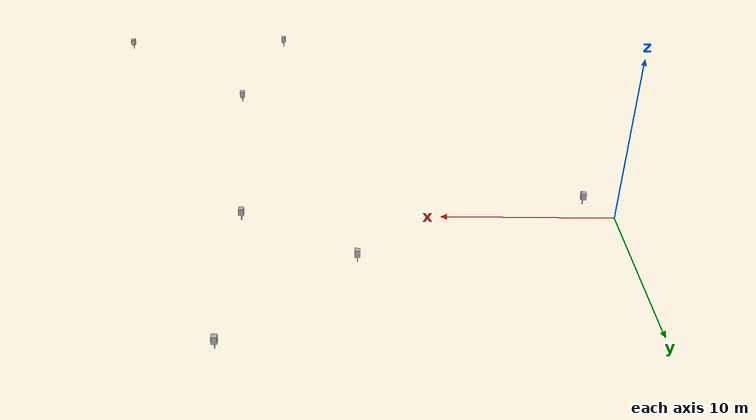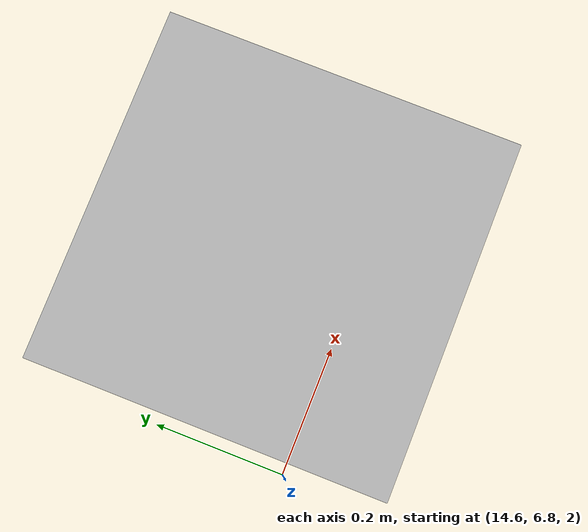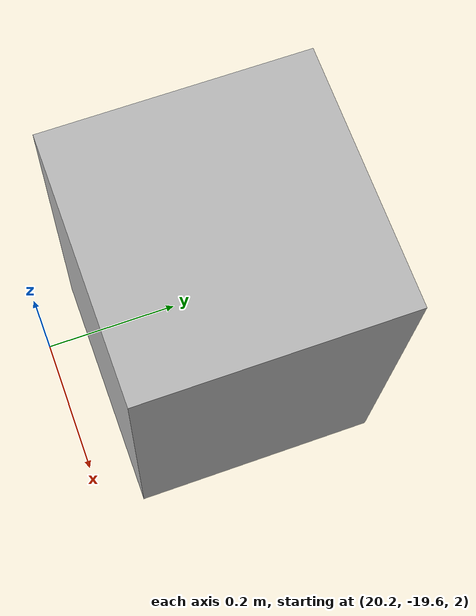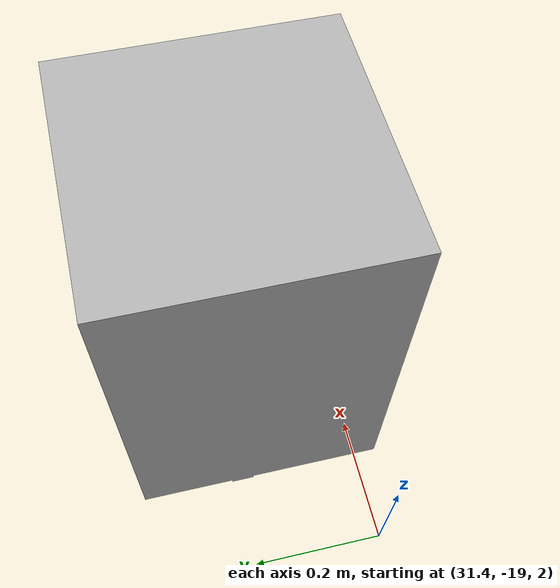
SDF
<sdf version="1.6">
 <world name="marsyard">
  <include><uri>model://sun</uri></include>
  <include><uri>model://mark5</uri><pose>2 0 1 0 0 3.14</pose></include>
  <include><uri>model://mark6</uri><pose>21.01 13.21 2 0 0 0</pose></include>
  <include><uri>model://mark7</uri><pose>20.96 3.36 2 0 0 0</pose></include>
  <include><uri>model://mark8</uri><pose>20.40 -19.41 2 0 0 0</pose></include>
  <include><uri>model://mark9</uri><pose>14.77 6.89 2 0 0 0</pose></include>
  <include><uri>model://mark10</uri><pose>22.46 -10.36 2 0 0 0</pose></include>
  <include><uri>model://mark11</uri><pose>31.56 -18.81 2 0 0 0</pose></include>
 </world>
</sdf>

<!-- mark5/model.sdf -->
<sdf version='1.6'>
  <model name='marker5'>
    <link name='link_0'>
      <inertial>
        <mass>1</mass>
        <inertia>
          <ixx>0.166667</ixx>
          <ixy>0</ixy>
          <ixz>0</ixz>
          <iyy>0.166667</iyy>
          <iyz>0</iyz>
          <izz>0.166667</izz>
        </inertia>
      </inertial>
      <pose frame=''>0 -0 0 0 -0 0</pose>
      <visual name='visual'>
        <pose frame=''>0 0 0 0 -0 0</pose>
        <geometry>
          <mesh>
            <uri>model://mark5/collada/m5.dae</uri><!-- path updated-->
            <scale>1 1 1</scale>
          </mesh>
        </geometry>
        <transparency>0</transparency>
        <cast_shadows>1</cast_shadows>
      </visual>
      <collision name='collision'>
        <laser_retro>0</laser_retro>
        <max_contacts>10</max_contacts>
        <pose frame=''>0 0 0 0 -0 0</pose>
        <geometry>
          <mesh>
            <uri>model://mark5/collada/m5.dae</uri><!-- path updated-->
            <scale>1 1 1</scale>
          </mesh>
        </geometry>
        <surface>
          <friction>
            <ode>
              <mu>1</mu>
              <mu2>1</mu2>
              <fdir1>0 0 0</fdir1>
              <slip1>0</slip1>
              <slip2>0</slip2>
            </ode>
            <torsional>
              <coefficient>1</coefficient>
              <patch_radius>0</patch_radius>
              <surface_radius>0</surface_radius>
              <use_patch_radius>1</use_patch_radius>
              <ode>
                <slip>0</slip>
              </ode>
            </torsional>
          </friction>
          <bounce>
            <restitution_coefficient>0</restitution_coefficient>
            <threshold>1e+06</threshold>
          </bounce>
          <contact>
            <collide_without_contact>0</collide_without_contact>
            <collide_without_contact_bitmask>1</collide_without_contact_bitmask>
            <collide_bitmask>1</collide_bitmask>
            <ode>
              <soft_cfm>0</soft_cfm>
              <soft_erp>0.2</soft_erp>
              <kp>1e+13</kp>
              <kd>1</kd>
              <max_vel>0.01</max_vel>
              <min_depth>0</min_depth>
            </ode>
            <bullet>
              <split_impulse>1</split_impulse>
              <split_impulse_penetration_threshold>-0.01</split_impulse_penetration_threshold>
              <soft_cfm>0</soft_cfm>
              <soft_erp>0.2</soft_erp>
              <kp>1e+13</kp>
              <kd>1</kd>
            </bullet>
          </contact>
        </surface>
      </collision>
    </link>
    <static>1</static>
    <allow_auto_disable>1</allow_auto_disable>
  </model>
</sdf>

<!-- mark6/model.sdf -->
<sdf version='1.6'>
  <model name='marker5'>
    <link name='link_0'>
      <inertial>
        <mass>1</mass>
        <inertia>
          <ixx>0.166667</ixx>
          <ixy>0</ixy>
          <ixz>0</ixz>
          <iyy>0.166667</iyy>
          <iyz>0</iyz>
          <izz>0.166667</izz>
        </inertia>
      </inertial>
      <pose frame=''>0 -0 0 0 -0 0</pose>
      <visual name='visual'>
        <pose frame=''>0 0 0 0 -0 0</pose>
        <geometry>
          <mesh>
            <uri>model://mark6/collada/m6.dae</uri><!-- path updated-->
            <scale>1 1 1</scale>
          </mesh>
        </geometry>
        <transparency>0</transparency>
        <cast_shadows>1</cast_shadows>
      </visual>
      <collision name='collision'>
        <laser_retro>0</laser_retro>
        <max_contacts>10</max_contacts>
        <pose frame=''>0 0 0 0 -0 0</pose>
        <geometry>
          <mesh>
            <uri>model://mark6/collada/m6.dae</uri><!-- path updated-->
            <scale>1 1 1</scale>
          </mesh>
        </geometry>
        <surface>
          <friction>
            <ode>
              <mu>1</mu>
              <mu2>1</mu2>
              <fdir1>0 0 0</fdir1>
              <slip1>0</slip1>
              <slip2>0</slip2>
            </ode>
            <torsional>
              <coefficient>1</coefficient>
              <patch_radius>0</patch_radius>
              <surface_radius>0</surface_radius>
              <use_patch_radius>1</use_patch_radius>
              <ode>
                <slip>0</slip>
              </ode>
            </torsional>
          </friction>
          <bounce>
            <restitution_coefficient>0</restitution_coefficient>
            <threshold>1e+06</threshold>
          </bounce>
          <contact>
            <collide_without_contact>0</collide_without_contact>
            <collide_without_contact_bitmask>1</collide_without_contact_bitmask>
            <collide_bitmask>1</collide_bitmask>
            <ode>
              <soft_cfm>0</soft_cfm>
              <soft_erp>0.2</soft_erp>
              <kp>1e+13</kp>
              <kd>1</kd>
              <max_vel>0.01</max_vel>
              <min_depth>0</min_depth>
            </ode>
            <bullet>
              <split_impulse>1</split_impulse>
              <split_impulse_penetration_threshold>-0.01</split_impulse_penetration_threshold>
              <soft_cfm>0</soft_cfm>
              <soft_erp>0.2</soft_erp>
              <kp>1e+13</kp>
              <kd>1</kd>
            </bullet>
          </contact>
        </surface>
      </collision>
    </link>
    <static>1</static>
    <allow_auto_disable>1</allow_auto_disable>
  </model>
</sdf>

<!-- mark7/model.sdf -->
<sdf version='1.6'>
  <model name='marker5'>
    <link name='link_0'>
      <inertial>
        <mass>1</mass>
        <inertia>
          <ixx>0.166667</ixx>
          <ixy>0</ixy>
          <ixz>0</ixz>
          <iyy>0.166667</iyy>
          <iyz>0</iyz>
          <izz>0.166667</izz>
        </inertia>
      </inertial>
      <pose frame=''>0 -0 0 0 -0 0</pose>
      <visual name='visual'>
        <pose frame=''>0 0 0 0 -0 0</pose>
        <geometry>
          <mesh>
            <uri>model://mark7/collada/m7.dae</uri><!-- path updated-->
            <scale>1 1 1</scale>
          </mesh>
        </geometry>
        <transparency>0</transparency>
        <cast_shadows>1</cast_shadows>
      </visual>
      <collision name='collision'>
        <laser_retro>0</laser_retro>
        <max_contacts>10</max_contacts>
        <pose frame=''>0 0 0 0 -0 0</pose>
        <geometry>
          <mesh>
            <uri>model://mark7/collada/m7.dae</uri><!-- path updated-->
            <scale>1 1 1</scale>
          </mesh>
        </geometry>
        <surface>
          <friction>
            <ode>
              <mu>1</mu>
              <mu2>1</mu2>
              <fdir1>0 0 0</fdir1>
              <slip1>0</slip1>
              <slip2>0</slip2>
            </ode>
            <torsional>
              <coefficient>1</coefficient>
              <patch_radius>0</patch_radius>
              <surface_radius>0</surface_radius>
              <use_patch_radius>1</use_patch_radius>
              <ode>
                <slip>0</slip>
              </ode>
            </torsional>
          </friction>
          <bounce>
            <restitution_coefficient>0</restitution_coefficient>
            <threshold>1e+06</threshold>
          </bounce>
          <contact>
            <collide_without_contact>0</collide_without_contact>
            <collide_without_contact_bitmask>1</collide_without_contact_bitmask>
            <collide_bitmask>1</collide_bitmask>
            <ode>
              <soft_cfm>0</soft_cfm>
              <soft_erp>0.2</soft_erp>
              <kp>1e+13</kp>
              <kd>1</kd>
              <max_vel>0.01</max_vel>
              <min_depth>0</min_depth>
            </ode>
            <bullet>
              <split_impulse>1</split_impulse>
              <split_impulse_penetration_threshold>-0.01</split_impulse_penetration_threshold>
              <soft_cfm>0</soft_cfm>
              <soft_erp>0.2</soft_erp>
              <kp>1e+13</kp>
              <kd>1</kd>
            </bullet>
          </contact>
        </surface>
      </collision>
    </link>
    <static>1</static>
    <allow_auto_disable>1</allow_auto_disable>
  </model>
</sdf>

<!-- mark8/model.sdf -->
<sdf version='1.6'>
  <model name='marker5'>
    <link name='link_0'>
      <inertial>
        <mass>1</mass>
        <inertia>
          <ixx>0.166667</ixx>
          <ixy>0</ixy>
          <ixz>0</ixz>
          <iyy>0.166667</iyy>
          <iyz>0</iyz>
          <izz>0.166667</izz>
        </inertia>
      </inertial>
      <pose frame=''>0 -0 0 0 -0 0</pose>
      <visual name='visual'>
        <pose frame=''>0 0 0 0 -0 0</pose>
        <geometry>
          <mesh>
            <uri>model://mark8/collada/m8.dae</uri><!-- path updated-->
            <scale>1 1 1</scale>
          </mesh>
        </geometry>
        <transparency>0</transparency>
        <cast_shadows>1</cast_shadows>
      </visual>
      <collision name='collision'>
        <laser_retro>0</laser_retro>
        <max_contacts>10</max_contacts>
        <pose frame=''>0 0 0 0 -0 0</pose>
        <geometry>
          <mesh>
            <uri>model://mark8/collada/m8.dae</uri><!-- path updated-->
            <scale>1 1 1</scale>
          </mesh>
        </geometry>
        <surface>
          <friction>
            <ode>
              <mu>1</mu>
              <mu2>1</mu2>
              <fdir1>0 0 0</fdir1>
              <slip1>0</slip1>
              <slip2>0</slip2>
            </ode>
            <torsional>
              <coefficient>1</coefficient>
              <patch_radius>0</patch_radius>
              <surface_radius>0</surface_radius>
              <use_patch_radius>1</use_patch_radius>
              <ode>
                <slip>0</slip>
              </ode>
            </torsional>
          </friction>
          <bounce>
            <restitution_coefficient>0</restitution_coefficient>
            <threshold>1e+06</threshold>
          </bounce>
          <contact>
            <collide_without_contact>0</collide_without_contact>
            <collide_without_contact_bitmask>1</collide_without_contact_bitmask>
            <collide_bitmask>1</collide_bitmask>
            <ode>
              <soft_cfm>0</soft_cfm>
              <soft_erp>0.2</soft_erp>
              <kp>1e+13</kp>
              <kd>1</kd>
              <max_vel>0.01</max_vel>
              <min_depth>0</min_depth>
            </ode>
            <bullet>
              <split_impulse>1</split_impulse>
              <split_impulse_penetration_threshold>-0.01</split_impulse_penetration_threshold>
              <soft_cfm>0</soft_cfm>
              <soft_erp>0.2</soft_erp>
              <kp>1e+13</kp>
              <kd>1</kd>
            </bullet>
          </contact>
        </surface>
      </collision>
    </link>
    <static>1</static>
    <allow_auto_disable>1</allow_auto_disable>
  </model>
</sdf>

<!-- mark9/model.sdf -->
<sdf version='1.6'>
  <model name='marker5'>
    <link name='link_0'>
      <inertial>
        <mass>1</mass>
        <inertia>
          <ixx>0.166667</ixx>
          <ixy>0</ixy>
          <ixz>0</ixz>
          <iyy>0.166667</iyy>
          <iyz>0</iyz>
          <izz>0.166667</izz>
        </inertia>
      </inertial>
      <pose frame=''>0 -0 0 0 -0 0</pose>
      <visual name='visual'>
        <pose frame=''>0 0 0 0 -0 0</pose>
        <geometry>
          <mesh>
            <uri>model://mark9/collada/m9.dae</uri><!-- path updated-->
            <scale>1 1 1</scale>
          </mesh>
        </geometry>
        <transparency>0</transparency>
        <cast_shadows>1</cast_shadows>
      </visual>
      <collision name='collision'>
        <laser_retro>0</laser_retro>
        <max_contacts>10</max_contacts>
        <pose frame=''>0 0 0 0 -0 0</pose>
        <geometry>
          <mesh>
            <uri>model://mark9/collada/m9.dae</uri><!-- path updated-->
            <scale>1 1 1</scale>
          </mesh>
        </geometry>
        <surface>
          <friction>
            <ode>
              <mu>1</mu>
              <mu2>1</mu2>
              <fdir1>0 0 0</fdir1>
              <slip1>0</slip1>
              <slip2>0</slip2>
            </ode>
            <torsional>
              <coefficient>1</coefficient>
              <patch_radius>0</patch_radius>
              <surface_radius>0</surface_radius>
              <use_patch_radius>1</use_patch_radius>
              <ode>
                <slip>0</slip>
              </ode>
            </torsional>
          </friction>
          <bounce>
            <restitution_coefficient>0</restitution_coefficient>
            <threshold>1e+06</threshold>
          </bounce>
          <contact>
            <collide_without_contact>0</collide_without_contact>
            <collide_without_contact_bitmask>1</collide_without_contact_bitmask>
            <collide_bitmask>1</collide_bitmask>
            <ode>
              <soft_cfm>0</soft_cfm>
              <soft_erp>0.2</soft_erp>
              <kp>1e+13</kp>
              <kd>1</kd>
              <max_vel>0.01</max_vel>
              <min_depth>0</min_depth>
            </ode>
            <bullet>
              <split_impulse>1</split_impulse>
              <split_impulse_penetration_threshold>-0.01</split_impulse_penetration_threshold>
              <soft_cfm>0</soft_cfm>
              <soft_erp>0.2</soft_erp>
              <kp>1e+13</kp>
              <kd>1</kd>
            </bullet>
          </contact>
        </surface>
      </collision>
    </link>
    <static>1</static>
    <allow_auto_disable>1</allow_auto_disable>
  </model>
</sdf>

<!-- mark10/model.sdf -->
<sdf version='1.6'>
  <model name='marker5'>
    <link name='link_0'>
      <inertial>
        <mass>1</mass>
        <inertia>
          <ixx>0.166667</ixx>
          <ixy>0</ixy>
          <ixz>0</ixz>
          <iyy>0.166667</iyy>
          <iyz>0</iyz>
          <izz>0.166667</izz>
        </inertia>
      </inertial>
      <pose frame=''>0 -0 0 0 -0 0</pose>
      <visual name='visual'>
        <pose frame=''>0 0 0 0 -0 0</pose>
        <geometry>
          <mesh>
            <uri>model://mark10/collada/m10.dae</uri><!-- path updated-->
            <scale>1 1 1</scale>
          </mesh>
        </geometry>
        <transparency>0</transparency>
        <cast_shadows>1</cast_shadows>
      </visual>
      <collision name='collision'>
        <laser_retro>0</laser_retro>
        <max_contacts>10</max_contacts>
        <pose frame=''>0 0 0 0 -0 0</pose>
        <geometry>
          <mesh>
            <uri>model://mark10/collada/m10.dae</uri><!-- path updated-->
            <scale>1 1 1</scale>
          </mesh>
        </geometry>
        <surface>
          <friction>
            <ode>
              <mu>1</mu>
              <mu2>1</mu2>
              <fdir1>0 0 0</fdir1>
              <slip1>0</slip1>
              <slip2>0</slip2>
            </ode>
            <torsional>
              <coefficient>1</coefficient>
              <patch_radius>0</patch_radius>
              <surface_radius>0</surface_radius>
              <use_patch_radius>1</use_patch_radius>
              <ode>
                <slip>0</slip>
              </ode>
            </torsional>
          </friction>
          <bounce>
            <restitution_coefficient>0</restitution_coefficient>
            <threshold>1e+06</threshold>
          </bounce>
          <contact>
            <collide_without_contact>0</collide_without_contact>
            <collide_without_contact_bitmask>1</collide_without_contact_bitmask>
            <collide_bitmask>1</collide_bitmask>
            <ode>
              <soft_cfm>0</soft_cfm>
              <soft_erp>0.2</soft_erp>
              <kp>1e+13</kp>
              <kd>1</kd>
              <max_vel>0.01</max_vel>
              <min_depth>0</min_depth>
            </ode>
            <bullet>
              <split_impulse>1</split_impulse>
              <split_impulse_penetration_threshold>-0.01</split_impulse_penetration_threshold>
              <soft_cfm>0</soft_cfm>
              <soft_erp>0.2</soft_erp>
              <kp>1e+13</kp>
              <kd>1</kd>
            </bullet>
          </contact>
        </surface>
      </collision>
    </link>
    <static>1</static>
    <allow_auto_disable>1</allow_auto_disable>
  </model>
</sdf>

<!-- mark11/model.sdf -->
<sdf version='1.6'>
  <model name='marker5'>
    <link name='link_0'>
      <inertial>
        <mass>1</mass>
        <inertia>
          <ixx>0.166667</ixx>
          <ixy>0</ixy>
          <ixz>0</ixz>
          <iyy>0.166667</iyy>
          <iyz>0</iyz>
          <izz>0.166667</izz>
        </inertia>
      </inertial>
      <pose frame=''>0 -0 0 0 -0 0</pose>
      <visual name='visual'>
        <pose frame=''>0 0 0 0 -0 0</pose>
        <geometry>
          <mesh>
            <uri>model://mark11/collada/m11.dae</uri><!-- path updated-->
            <scale>1 1 1</scale>
          </mesh>
        </geometry>
        <transparency>0</transparency>
        <cast_shadows>1</cast_shadows>
      </visual>
      <collision name='collision'>
        <laser_retro>0</laser_retro>
        <max_contacts>10</max_contacts>
        <pose frame=''>0 0 0 0 -0 0</pose>
        <geometry>
          <mesh>
            <uri>model://mark11/collada/m11.dae</uri><!-- path updated-->
            <scale>1 1 1</scale>
          </mesh>
        </geometry>
        <surface>
          <friction>
            <ode>
              <mu>1</mu>
              <mu2>1</mu2>
              <fdir1>0 0 0</fdir1>
              <slip1>0</slip1>
              <slip2>0</slip2>
            </ode>
            <torsional>
              <coefficient>1</coefficient>
              <patch_radius>0</patch_radius>
              <surface_radius>0</surface_radius>
              <use_patch_radius>1</use_patch_radius>
              <ode>
                <slip>0</slip>
              </ode>
            </torsional>
          </friction>
          <bounce>
            <restitution_coefficient>0</restitution_coefficient>
            <threshold>1e+06</threshold>
          </bounce>
          <contact>
            <collide_without_contact>0</collide_without_contact>
            <collide_without_contact_bitmask>1</collide_without_contact_bitmask>
            <collide_bitmask>1</collide_bitmask>
            <ode>
              <soft_cfm>0</soft_cfm>
              <soft_erp>0.2</soft_erp>
              <kp>1e+13</kp>
              <kd>1</kd>
              <max_vel>0.01</max_vel>
              <min_depth>0</min_depth>
            </ode>
            <bullet>
              <split_impulse>1</split_impulse>
              <split_impulse_penetration_threshold>-0.01</split_impulse_penetration_threshold>
              <soft_cfm>0</soft_cfm>
              <soft_erp>0.2</soft_erp>
              <kp>1e+13</kp>
              <kd>1</kd>
            </bullet>
          </contact>
        </surface>
      </collision>
    </link>
    <static>1</static>
    <allow_auto_disable>1</allow_auto_disable>
  </model>
</sdf>
